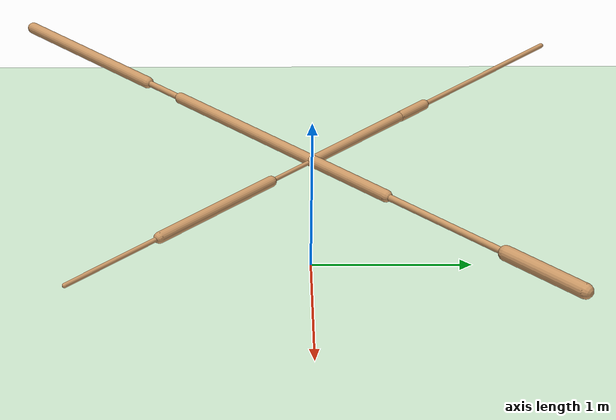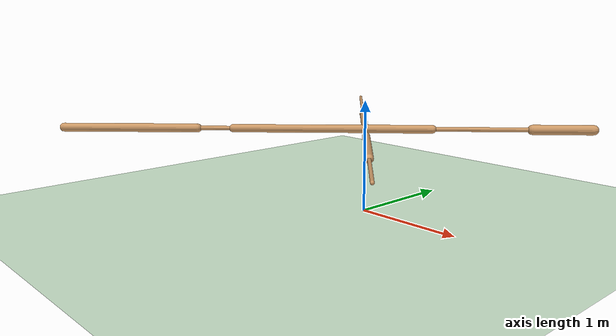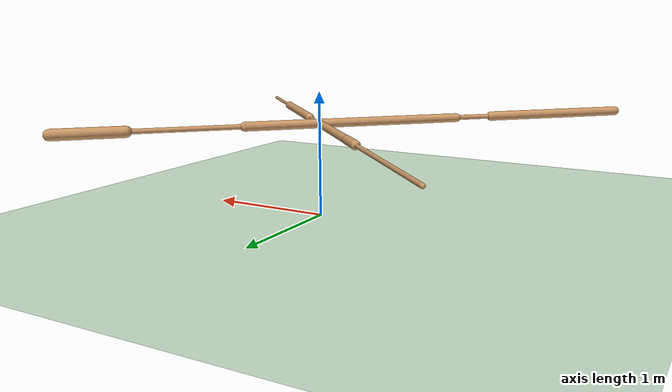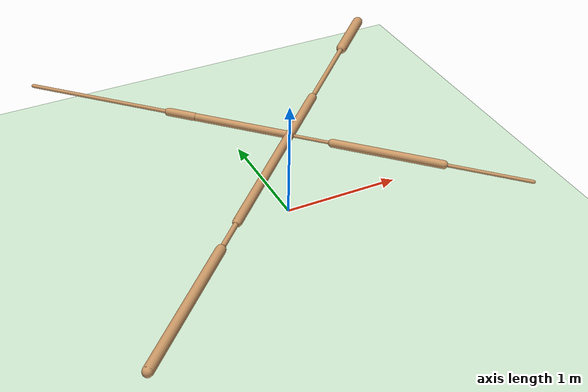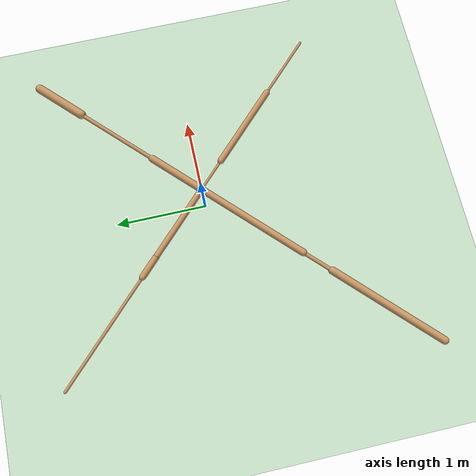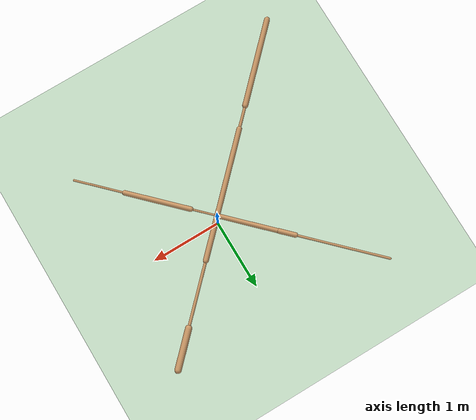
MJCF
<mujoco model="ant">
  <compiler angle="degree" coordinate="local" inertiafromgeom="true" />
  <option integrator="RK4" timestep="0.01" />
  <custom>
    <numeric data="0.0 0.0 0.55 1.0 0.0 0.0 0.0 0.0 1.0 0.0 -1.0 0.0 -1.0 0.0 1.0" name="init_qpos" />
  </custom>
  <default>
    <joint armature="1" damping="1" limited="true" />
    <geom conaffinity="0" condim="3" density="5.0" friction="1 0.5 0.5" margin="0.01" rgba="0.8 0.6 0.4 1" />
  </default>
  <asset>
    <texture builtin="gradient" height="100" rgb1="1 1 1" rgb2="0 0 0" type="skybox" width="100" />
    <texture builtin="flat" height="1278" mark="cross" markrgb="1 1 1" name="texgeom" random="0.01" rgb1="0.8 0.6 0.4" rgb2="0.8 0.6 0.4" type="cube" width="127" />
    <texture builtin="checker" height="100" name="texplane" rgb1="0 0 0" rgb2="0.8 0.8 0.8" type="2d" width="100" />
    <material name="MatPlane" reflectance="0.5" shininess="1" specular="1" texrepeat="60 60" texture="texplane" />
    <material name="geom" texture="texgeom" texuniform="true" />
  </asset>
  <worldbody>
    <light cutoff="100" diffuse="1 1 1" dir="-0 0 -1.3" directional="true" exponent="1" pos="0 0 1.3" specular=".1 .1 .1" />
    <geom conaffinity="1" condim="3" material="MatPlane" name="floor" pos="0 0 0" rgba="0.8 0.9 0.8 1" size="40 40 40" type="plane" />
    <body name="torso" pos="0 0 0.75">
      <camera name="track" mode="trackcom" pos="0 -11 5" xyaxes="1 0 0 0 0.5 1" />
      <geom name="torso_geom" pos="0 0 0" size="0.03410430997610092" type="sphere" />
      <joint armature="0" damping="0" limited="false" margin="0.01" name="root" pos="0 0 0" type="free" />
      <body name="front_left_leg" pos="0 0 0">
        <geom fromto="0 0 0 0.4199414551258087 0.4199414551258087 0" name="aux_1_geom" size="0.0372588150203228" type="capsule" />
        <body name="aux_1" pos="0.4199414551258087 0.4199414551258087 0">
          <joint axis="0 0 1" name="hip_1" pos="0.0 0.0 0.0" range="-30 30" type="hinge" />
          <geom fromto="0 0 0 0.6202652454376221 0.6202652454376221 0" name="left_leg_geom" size="0.0202957596629858" type="capsule" />
          <body name="left_leg_geom_aux" pos="0.6202652454376221 0.6202652454376221 0">
            <joint axis="-1 1 0" name="ankle_1" pos="0.0 0.0 0.0" range="30 70" type="hinge" />
            <geom fromto="0 0 0 0.37501049041748047 0.37501049041748047 0" name="left_ankle_geom" size="0.04485439509153366" type="capsule" />
          </body>
        </body>
      </body>
      <body name="front_right_leg" pos="0 0 0">
        <geom fromto="0 0 0 -0.5703443288803101 0.5703443288803101 0" name="aux_2_geom" size="0.03125544264912605" type="capsule" />
        <body name="aux_2" pos="-0.5703443288803101 0.5703443288803101 0">
          <joint axis="0 0 1" name="hip_2" pos="0.0 0.0 0.0" range="-30 30" type="hinge" />
          <geom fromto="0 0 0 -0.1579873412847519 0.1579873412847519 0" name="right_leg_geom" size="0.033471256494522095" type="capsule" />
          <body name="right_leg_geom_aux" pos="-0.1579873412847519 0.1579873412847519 0">
            <joint axis="1 1 0" name="ankle_2" pos="0.0 0.0 0.0" range="-70 -30" type="hinge" />
            <geom fromto="0 0 0 -0.8746494054794312 0.8746494054794312 0" name="right_ankle_geom" size="0.015835069119930267" type="capsule" />
          </body>
        </body>
      </body>
      <body name="back_leg" pos="0 0 0">
        <geom fromto="0 0 0 -0.8303682208061218 -0.8303682208061218 0" name="aux_3_geom" size="0.035829875618219376" type="capsule" />
        <body name="aux_3" pos="-0.8303682208061218 -0.8303682208061218 0">
          <joint axis="0 0 1" name="hip_3" pos="0.0 0.0 0.0" range="-30 30" type="hinge" />
          <geom fromto="0 0 0 -0.22650906443595886 -0.22650906443595886 0" name="back_leg_geom" size="0.019947189837694168" type="capsule" />
          <body name="back_leg_geom_aux" pos="-0.22650906443595886 -0.22650906443595886 0">
            <joint axis="-1 1 0" name="ankle_3" pos="0.0 0.0 0.0" range="-70 -30" type="hinge" />
            <geom fromto="0 0 0 -0.8544753789901733 -0.8544753789901733 0" name="third_ankle_geom" size="0.03849155828356743" type="capsule" />
          </body>
        </body>
      </body>
      <body name="right_back_leg" pos="0 0 0">
        <geom fromto="0 0 0 0.24761053919792175 -0.24761053919792175 0" name="aux_4_geom" size="0.013490099459886551" type="capsule" />
        <body name="aux_4" pos="0.24761053919792175 -0.24761053919792175 0">
          <joint axis="0 0 1" name="hip_4" pos="0.0 0.0 0.0" range="-30 30" type="hinge" />
          <geom fromto="0 0 0 0.619896650314331 -0.619896650314331 0" name="rightback_leg_geom" size="0.033797793090343475" type="capsule" />
          <body name="rightback_leg_geom_aux" pos="0.619896650314331 -0.619896650314331 0">
            <joint axis="1 1 0" name="ankle_4" pos="0.0 0.0 0.0" range="30 70" type="hinge" />
            <geom fromto="0 0 0 0.476570725440979 -0.476570725440979 0" name="fourth_ankle_geom" size="0.014035949483513832" type="capsule" />
          </body>
        </body>
      </body>
    </body>
  </worldbody>
  <actuator>
    <motor ctrllimited="true" ctrlrange="-1.0 1.0" joint="hip_4" gear="150" />
    <motor ctrllimited="true" ctrlrange="-1.0 1.0" joint="ankle_4" gear="150" />
    <motor ctrllimited="true" ctrlrange="-1.0 1.0" joint="hip_1" gear="150" />
    <motor ctrllimited="true" ctrlrange="-1.0 1.0" joint="ankle_1" gear="150" />
    <motor ctrllimited="true" ctrlrange="-1.0 1.0" joint="hip_2" gear="150" />
    <motor ctrllimited="true" ctrlrange="-1.0 1.0" joint="ankle_2" gear="150" />
    <motor ctrllimited="true" ctrlrange="-1.0 1.0" joint="hip_3" gear="150" />
    <motor ctrllimited="true" ctrlrange="-1.0 1.0" joint="ankle_3" gear="150" />
  </actuator>
</mujoco>
